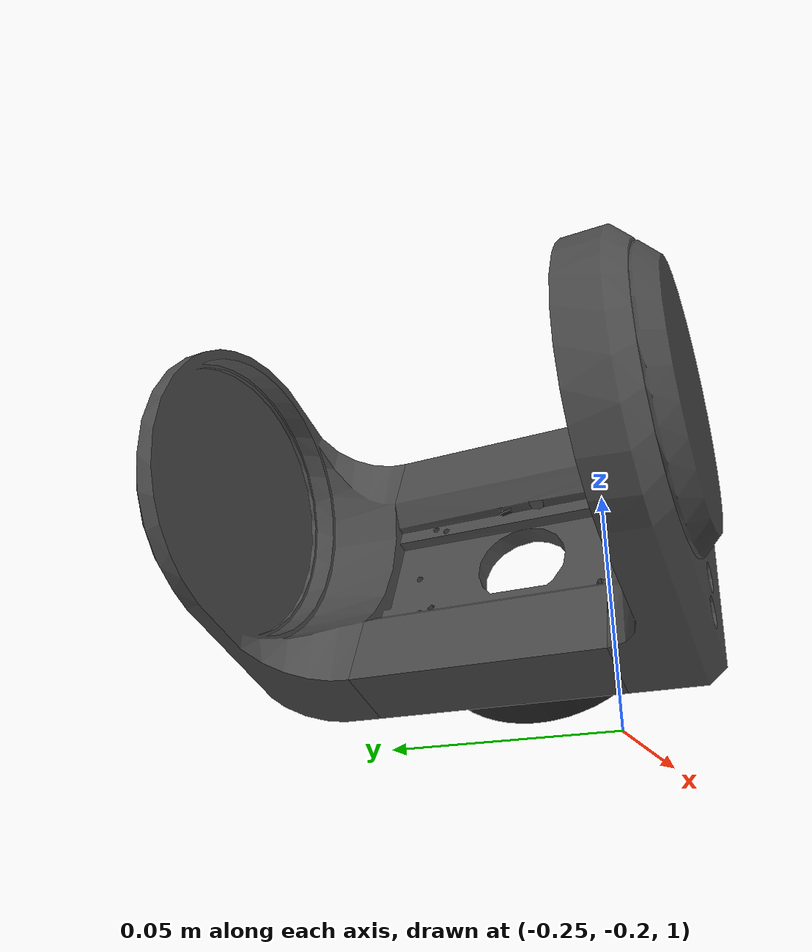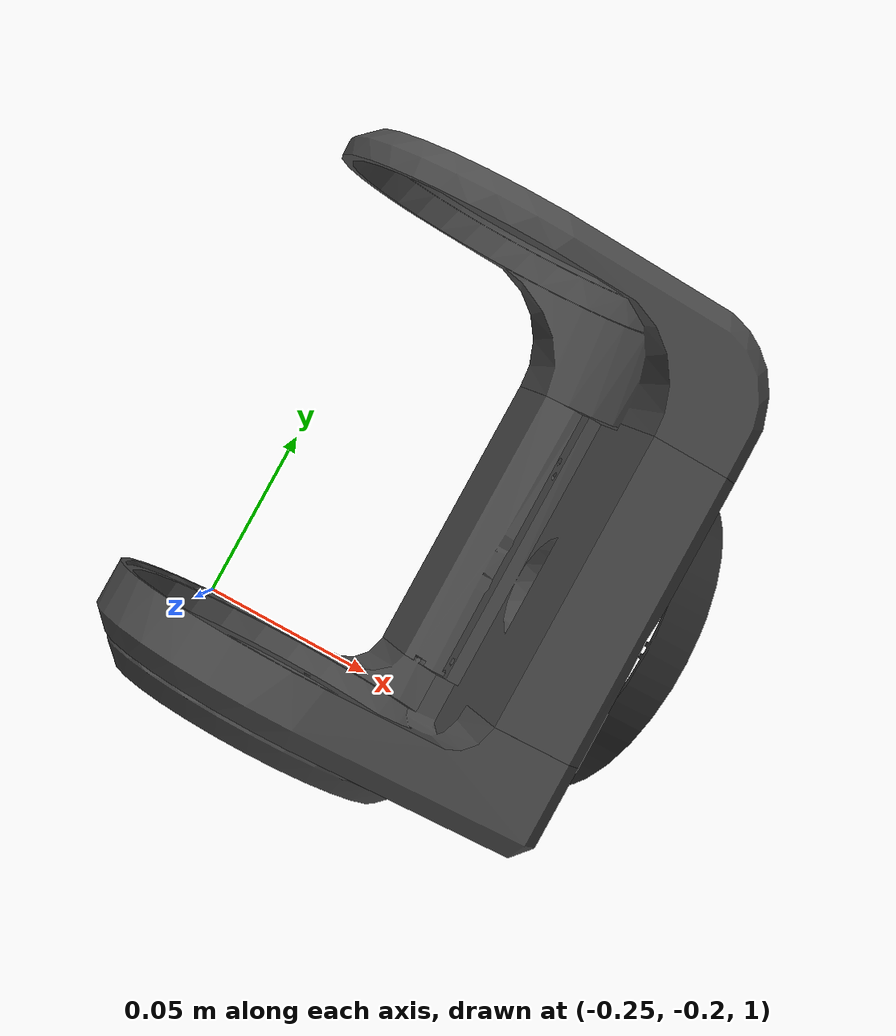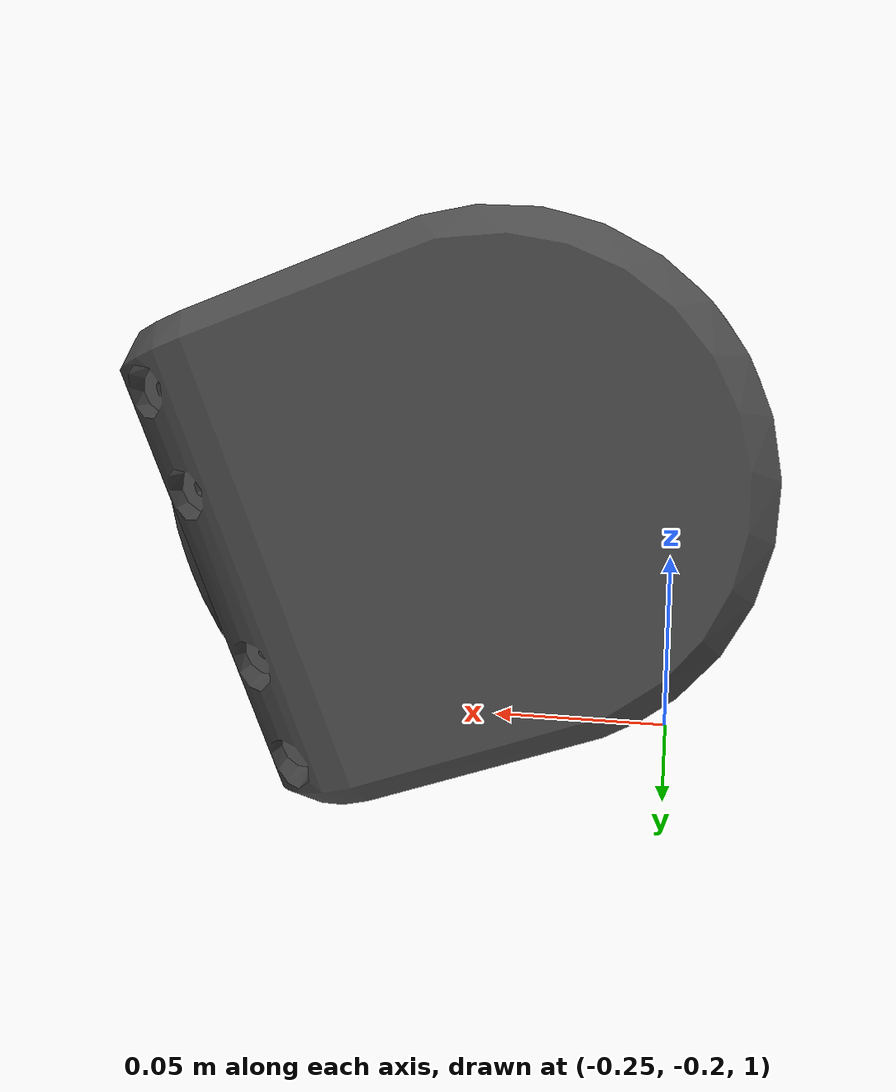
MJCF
<mujoco model="right_arm_1">
  <default>
    <default class="visual">
      <geom group="2" type="mesh" contype="0" conaffinity="0"/>
    </default>
    <default class="collision">
      <geom group="3" type="mesh"/>
    </default>
  </default>
  <asset>
    <material name="39,39,39_3.003" specular="1.0" shininess="0.2" rgba="0.152941 0.152941 0.152941 1.000000"/>
    <material name="69,69,69_5.001" specular="1.0" shininess="0.2" rgba="0.270588 0.270588 0.270588 1.000000"/>
    <material name="75,75,75_21.001" specular="1.0" shininess="0.2" rgba="0.294118 0.294118 0.294118 1.000000"/>
    <material name="75,75,75_23.001" specular="1.0" shininess="0.2" rgba="0.294118 0.294118 0.294118 1.000000"/>
    <material name="75,75,75_24.001" specular="1.0" shininess="0.2" rgba="0.294118 0.294118 0.294118 1.000000"/>
    <mesh file="right_arm_1_0.obj"/>
    <mesh file="right_arm_1_1.obj"/>
    <mesh file="right_arm_1_2.obj"/>
    <mesh file="right_arm_1_3.obj"/>
    <mesh file="right_arm_1_4.obj"/>
  </asset>
  <worldbody>
    <body name="right_arm_1">
      <geom mesh="right_arm_1_0" material="75,75,75_24.001" class="visual"/>
      <geom mesh="right_arm_1_1" material="75,75,75_23.001" class="visual"/>
      <geom mesh="right_arm_1_2" material="75,75,75_21.001" class="visual"/>
      <geom mesh="right_arm_1_3" material="69,69,69_5.001" class="visual"/>
      <geom mesh="right_arm_1_4" material="39,39,39_3.003" class="visual"/>
      <geom mesh="right_arm_1_0" class="collision"/>
      <geom mesh="right_arm_1_1" class="collision"/>
      <geom mesh="right_arm_1_2" class="collision"/>
      <geom mesh="right_arm_1_3" class="collision"/>
      <geom mesh="right_arm_1_4" class="collision"/>
    </body>
  </worldbody>
</mujoco>
